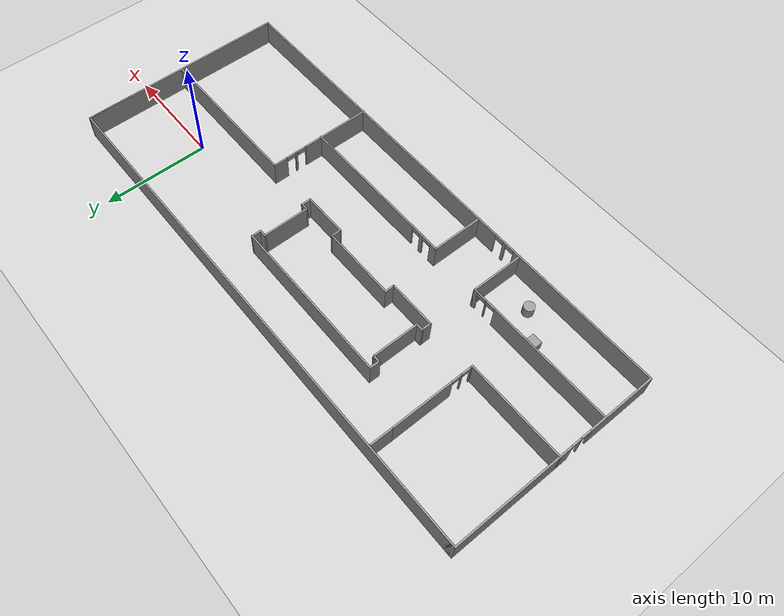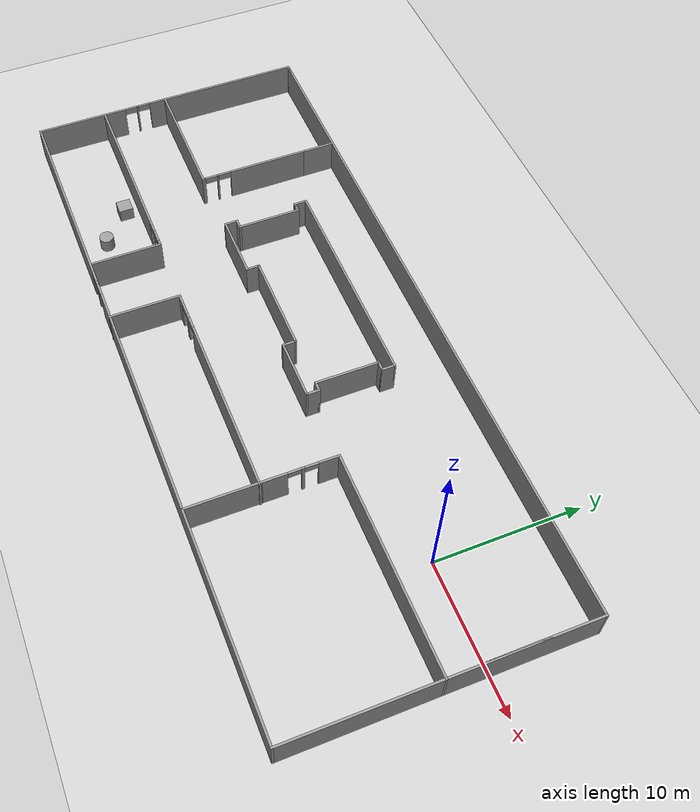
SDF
<sdf version="1.6">
 <world name="default">
  <model name="ground_plane">
   <static>1</static>
   <link name="link">
    <collision name="collision">
     <geometry><plane><normal>0 0 1</normal><size>100 100</size></plane></geometry>
     <surface><friction><ode><mu>100</mu><mu2>50</mu2></ode></friction></surface>
    </collision>
    <visual name="visual">
     <cast_shadows>0</cast_shadows>
     <geometry><plane><normal>0 0 1</normal><size>100 100</size></plane></geometry>
     <material>
      <script><uri>file://media/materials/scripts/gazebo.material</uri><name>Gazebo/Grey</name></script>
     </material>
    </visual>
   </link>
  </model>
  <model name="unit_cylinder_2">
   <pose>-30.9354 -11.0293 0.499997 4e-06 3e-06 -0</pose>
   <link name="link">
    <inertial>
     <mass>1</mass>
     <inertia><ixx>0.145833</ixx><ixy>0</ixy><ixz>0</ixz><iyy>0.145833</iyy><iyz>0</iyz><izz>0.125</izz></inertia>
    </inertial>
    <collision name="collision">
     <geometry><cylinder><radius>0.5</radius><length>1</length></cylinder></geometry>
    </collision>
    <visual name="visual">
     <geometry><cylinder><radius>0.5</radius><length>1</length></cylinder></geometry>
     <material>
      <script><name>Gazebo/Grey</name><uri>file://media/materials/scripts/gazebo.material</uri></script>
     </material>
    </visual>
   </link>
  </model>
  <model name="unit_box_8_1">
   <pose>-33.3865 -8.97945 0.499995 0 -1e-05 0</pose>
   <link name="link">
    <inertial>
     <mass>1</mass>
     <inertia>
      <ixx>0.166667</ixx>
      <ixy>0</ixy>
      <ixz>0</ixz>
      <iyy>0.166667</iyy>
      <iyz>0</iyz>
      <izz>0.166667</izz>
     </inertia>
    </inertial>
    <collision name="collision"><geometry><box><size>1 1 1</size></box></geometry></collision>
    <visual name="visual">
     <geometry><box><size>1 1 1</size></box></geometry>
     <material>
      <script><name>Gazebo/Grey</name><uri>file://media/materials/scripts/gazebo.material</uri></script>
     </material>
    </visual>
   </link>
  </model>
  <model name="build1_2">
   <pose>-17.0565 -2.99989 0 0 -0 0</pose>
   <link name="Wall_0">
    <collision name="Wall_0_Collision">
     <geometry><box><size>48.75 0.15 2.5</size></box></geometry>
     <pose>0 0 1.25 0 -0 0</pose>
    </collision>
    <visual name="Wall_0_Visual">
     <pose>0 0 1.25 0 -0 0</pose>
     <geometry><box><size>48.75 0.15 2.5</size></box></geometry>
     <material>
      <script><uri>file://media/materials/scripts/gazebo.material</uri><name>Gazebo/Grey</name></script>
      <ambient>1 1 1 1</ambient>
     </material>
    </visual>
    <pose>0.128151 9.93761 0 0 -0 0</pose>
   </link>
   <link name="Wall_10">
    <collision name="Wall_10_Collision">
     <geometry><box><size>0.75 0.15 2.5</size></box></geometry>
     <pose>0 0 1.25 0 -0 0</pose>
    </collision>
    <visual name="Wall_10_Visual">
     <pose>0 0 1.25 0 -0 0</pose>
     <geometry><box><size>0.75 0.15 2.5</size></box></geometry>
     <material>
      <script><uri>file://media/materials/scripts/gazebo.material</uri><name>Gazebo/Grey</name></script>
      <ambient>1 1 1 1</ambient>
     </material>
    </visual>
    <pose>-24.1218 9.93761 0 0 -0 0</pose>
   </link>
   <link name="Wall_101">
    <collision name="Wall_101_Collision">
     <geometry><box><size>10 0.15 2.5</size></box></geometry>
     <pose>0 0 1.25 0 -0 0</pose>
    </collision>
    <visual name="Wall_101_Visual">
     <pose>0 0 1.25 0 -0 0</pose>
     <geometry><box><size>10 0.15 2.5</size></box></geometry>
     <material>
      <script><uri>file://media/materials/scripts/gazebo.material</uri><name>Gazebo/Grey</name></script>
      <ambient>1 1 1 1</ambient>
     </material>
    </visual>
    <pose>24.4281 5.01261 0 0 0 -1.5708</pose>
   </link>
   <link name="Wall_102">
    <collision name="Wall_102_Collision">
     <geometry><box><size>15 0.15 2.5</size></box></geometry>
     <pose>0 0 1.25 0 -0 0</pose>
    </collision>
    <visual name="Wall_102_Visual">
     <pose>0 0 1.25 0 -0 0</pose>
     <geometry><box><size>15 0.15 2.5</size></box></geometry>
     <material>
      <script><uri>file://media/materials/scripts/gazebo.material</uri><name>Gazebo/Grey</name></script>
      <ambient>1 1 1 1</ambient>
     </material>
    </visual>
    <pose>17.0032 0.087612 0 0 -0 3.14159</pose>
   </link>
   <link name="Wall_103">
    <pose>9.57815 -2.46239 0 0 0 -1.5708</pose>
    <visual name="Wall_103_Visual_0">
     <pose>-1.90662 0 1.25 0 -0 0</pose>
     <geometry><box><size>1.43676 0.15 2.5</size></box></geometry>
     <material>
      <script><uri>file://media/materials/scripts/gazebo.material</uri><name>Gazebo/Grey</name></script>
      <ambient>1 1 1 1</ambient>
     </material>
    </visual>
    <collision name="Wall_103_Collision_0">
     <geometry><box><size>1.43676 0.15 2.5</size></box></geometry>
     <pose>-1.90662 0 1.25 0 -0 0</pose>
    </collision>
    <visual name="Wall_103_Visual_1">
     <pose>-0.188989 0 1.25 0 -0 0</pose>
     <geometry><box><size>0.198503 0.15 2.5</size></box></geometry>
     <material>
      <script><uri>file://media/materials/scripts/gazebo.material</uri><name>Gazebo/Grey</name></script>
      <ambient>1 1 1 1</ambient>
     </material>
    </visual>
    <collision name="Wall_103_Collision_1">
     <geometry><box><size>0.198503 0.15 2.5</size></box></geometry>
     <pose>-0.188989 0 1.25 0 -0 0</pose>
    </collision>
    <visual name="Wall_103_Visual_2">
     <pose>1.71763 0 1.25 0 -0 0</pose>
     <geometry><box><size>1.81474 0.15 2.5</size></box></geometry>
     <material>
      <script><uri>file://media/materials/scripts/gazebo.material</uri><name>Gazebo/Grey</name></script>
      <ambient>1 1 1 1</ambient>
     </material>
    </visual>
    <collision name="Wall_103_Collision_2">
     <geometry><box><size>1.81474 0.15 2.5</size></box></geometry>
     <pose>1.71763 0 1.25 0 -0 0</pose>
    </collision>
    <visual name="Wall_103_Visual_3">
     <pose>-0.73824 0 2.25 0 -0 0</pose>
     <geometry><box><size>0.9 0.15 0.5</size></box></geometry>
     <material>
      <script><uri>file://media/materials/scripts/gazebo.material</uri><name>Gazebo/Grey</name></script>
      <ambient>1 1 1 1</ambient>
     </material>
    </visual>
    <collision name="Wall_103_Collision_3">
     <geometry><box><size>0.9 0.15 0.5</size></box></geometry>
     <pose>-0.73824 0 2.25 0 -0 0</pose>
    </collision>
    <visual name="Wall_103_Visual_4">
     <pose>0.360263 0 2.25 0 -0 0</pose>
     <geometry><box><size>0.9 0.15 0.5</size></box></geometry>
     <material>
      <script><uri>file://media/materials/scripts/gazebo.material</uri><name>Gazebo/Grey</name></script>
      <ambient>1 1 1 1</ambient>
     </material>
    </visual>
    <collision name="Wall_103_Collision_4">
     <geometry><box><size>0.9 0.15 0.5</size></box></geometry>
     <pose>0.360263 0 2.25 0 -0 0</pose>
    </collision>
   </link>
   <link name="Wall_105">
    <pose>1.96209 -5.08761 0 0 -0 0</pose>
    <visual name="Wall_105_Visual_0">
     <pose>-7.37124 0 1.25 0 -0 0</pose>
     <geometry><box><size>0.757518 0.15 2.5</size></box></geometry>
     <material>
      <script><uri>file://media/materials/scripts/gazebo.material</uri><name>Gazebo/Grey</name></script>
      <ambient>1 1 1 1</ambient>
     </material>
    </visual>
    <collision name="Wall_105_Collision_0">
     <geometry><box><size>0.757518 0.15 2.5</size></box></geometry>
     <pose>-7.37124 0 1.25 0 -0 0</pose>
    </collision>
    <visual name="Wall_105_Visual_1">
     <pose>-5.91186 0 1.25 0 -0 0</pose>
     <geometry><box><size>0.361245 0.15 2.5</size></box></geometry>
     <material>
      <script><uri>file://media/materials/scripts/gazebo.material</uri><name>Gazebo/Grey</name></script>
      <ambient>1 1 1 1</ambient>
     </material>
    </visual>
    <collision name="Wall_105_Collision_1">
     <geometry><box><size>0.361245 0.15 2.5</size></box></geometry>
     <pose>-5.91186 0 1.25 0 -0 0</pose>
    </collision>
    <visual name="Wall_105_Visual_2">
     <pose>1.45938 0 1.25 0 -0 0</pose>
     <geometry><box><size>12.5812 0.15 2.5</size></box></geometry>
     <material>
      <script><uri>file://media/materials/scripts/gazebo.material</uri><name>Gazebo/Grey</name></script>
      <ambient>1 1 1 1</ambient>
     </material>
    </visual>
    <collision name="Wall_105_Collision_2">
     <geometry><box><size>12.5812 0.15 2.5</size></box></geometry>
     <pose>1.45938 0 1.25 0 -0 0</pose>
    </collision>
    <visual name="Wall_105_Visual_3">
     <pose>-6.54248 0 2.25 0 -0 0</pose>
     <geometry><box><size>0.9 0.15 0.5</size></box></geometry>
     <material>
      <script><uri>file://media/materials/scripts/gazebo.material</uri><name>Gazebo/Grey</name></script>
      <ambient>1 1 1 1</ambient>
     </material>
    </visual>
    <collision name="Wall_105_Collision_3">
     <geometry><box><size>0.9 0.15 0.5</size></box></geometry>
     <pose>-6.54248 0 2.25 0 -0 0</pose>
    </collision>
    <visual name="Wall_105_Visual_4">
     <pose>-5.28124 0 2.25 0 -0 0</pose>
     <geometry><box><size>0.9 0.15 0.5</size></box></geometry>
     <material>
      <script><uri>file://media/materials/scripts/gazebo.material</uri><name>Gazebo/Grey</name></script>
      <ambient>1 1 1 1</ambient>
     </material>
    </visual>
    <collision name="Wall_105_Collision_4">
     <geometry><box><size>0.9 0.15 0.5</size></box></geometry>
     <pose>-5.28124 0 2.25 0 -0 0</pose>
    </collision>
   </link>
   <link name="Wall_14">
    <collision name="Wall_14_Collision">
     <geometry><box><size>9.25 0.15 2.5</size></box></geometry>
     <pose>0 0 1.25 0 -0 0</pose>
    </collision>
    <visual name="Wall_14_Visual">
     <pose>0 0 1.25 0 -0 0</pose>
     <geometry><box><size>9.25 0.15 2.5</size></box></geometry>
     <material>
      <script><uri>file://media/materials/scripts/gazebo.material</uri><name>Gazebo/Grey</name></script>
      <ambient>1 1 1 1</ambient>
     </material>
    </visual>
    <pose>-19.8782 -0.176763 0 0 -0 3.14159</pose>
   </link>
   <link name="Wall_16">
    <pose>-15.3282 3.74824 0 0 -0 1.5708</pose>
    <visual name="Wall_16_Visual_0">
     <pose>-3.87767 0 1.25 0 -0 0</pose>
     <geometry><box><size>0.244662 0.15 2.5</size></box></geometry>
     <material>
      <script><uri>file://media/materials/scripts/gazebo.material</uri><name>Gazebo/Grey</name></script>
      <ambient>1 1 1 1</ambient>
     </material>
    </visual>
    <collision name="Wall_16_Collision_0">
     <geometry><box><size>0.244662 0.15 2.5</size></box></geometry>
     <pose>-3.87767 0 1.25 0 -0 0</pose>
    </collision>
    <visual name="Wall_16_Visual_1">
     <pose>-2.79773 0 1.25 0 -0 0</pose>
     <geometry><box><size>0.11521 0.15 2.5</size></box></geometry>
     <material>
      <script><uri>file://media/materials/scripts/gazebo.material</uri><name>Gazebo/Grey</name></script>
      <ambient>1 1 1 1</ambient>
     </material>
    </visual>
    <collision name="Wall_16_Collision_1">
     <geometry><box><size>0.11521 0.15 2.5</size></box></geometry>
     <pose>-2.79773 0 1.25 0 -0 0</pose>
    </collision>
    <visual name="Wall_16_Visual_2">
     <pose>1.07994 0 1.25 0 -0 0</pose>
     <geometry><box><size>5.84013 0.15 2.5</size></box></geometry>
     <material>
      <script><uri>file://media/materials/scripts/gazebo.material</uri><name>Gazebo/Grey</name></script>
      <ambient>1 1 1 1</ambient>
     </material>
    </visual>
    <collision name="Wall_16_Collision_2">
     <geometry><box><size>5.84013 0.15 2.5</size></box></geometry>
     <pose>1.07994 0 1.25 0 -0 0</pose>
    </collision>
    <visual name="Wall_16_Visual_3">
     <pose>-3.30534 0 2.25 0 -0 0</pose>
     <geometry><box><size>0.9 0.15 0.5</size></box></geometry>
     <material>
      <script><uri>file://media/materials/scripts/gazebo.material</uri><name>Gazebo/Grey</name></script>
      <ambient>1 1 1 1</ambient>
     </material>
    </visual>
    <collision name="Wall_16_Collision_3">
     <geometry><box><size>0.9 0.15 0.5</size></box></geometry>
     <pose>-3.30534 0 2.25 0 -0 0</pose>
    </collision>
    <visual name="Wall_16_Visual_4">
     <pose>-2.29013 0 2.25 0 -0 0</pose>
     <geometry><box><size>0.9 0.15 0.5</size></box></geometry>
     <material>
      <script><uri>file://media/materials/scripts/gazebo.material</uri><name>Gazebo/Grey</name></script>
      <ambient>1 1 1 1</ambient>
     </material>
    </visual>
    <collision name="Wall_16_Collision_4">
     <geometry><box><size>0.9 0.15 0.5</size></box></geometry>
     <pose>-2.29013 0 2.25 0 -0 0</pose>
    </collision>
   </link>
   <link name="Wall_19">
    <collision name="Wall_19_Collision">
     <geometry><box><size>2.25 0.15 2.5</size></box></geometry>
     <pose>0 0 1.25 0 -0 0</pose>
    </collision>
    <visual name="Wall_19_Visual">
     <pose>0 0 1.25 0 -0 0</pose>
     <geometry><box><size>2.25 0.15 2.5</size></box></geometry>
     <material>
      <script><uri>file://media/materials/scripts/gazebo.material</uri><name>Gazebo/Grey</name></script>
      <ambient>1 1 1 1</ambient>
     </material>
    </visual>
    <pose>-15.3282 8.72324 0 0 -0 1.5708</pose>
   </link>
   <link name="Wall_21">
    <pose>-17.4625 -4.93332 0 0 -0 0</pose>
    <visual name="Wall_21_Visual_0">
     <pose>-1.1775 0 1.25 0 -0 0</pose>
     <geometry><box><size>11.645 0.15 2.5</size></box></geometry>
     <material>
      <script><uri>file://media/materials/scripts/gazebo.material</uri><name>Gazebo/Grey</name></script>
      <ambient>1 1 1 1</ambient>
     </material>
    </visual>
    <collision name="Wall_21_Collision_0">
     <geometry><box><size>11.645 0.15 2.5</size></box></geometry>
     <pose>-1.1775 0 1.25 0 -0 0</pose>
    </collision>
    <visual name="Wall_21_Visual_1">
     <pose>5.6026 0 1.25 0 -0 0</pose>
     <geometry><box><size>0.115209 0.15 2.5</size></box></geometry>
     <material>
      <script><uri>file://media/materials/scripts/gazebo.material</uri><name>Gazebo/Grey</name></script>
      <ambient>1 1 1 1</ambient>
     </material>
    </visual>
    <collision name="Wall_21_Collision_1">
     <geometry><box><size>0.115209 0.15 2.5</size></box></geometry>
     <pose>5.6026 0 1.25 0 -0 0</pose>
    </collision>
    <visual name="Wall_21_Visual_2">
     <pose>6.7801 0 1.25 0 -0 0</pose>
     <geometry><box><size>0.439798 0.15 2.5</size></box></geometry>
     <material>
      <script><uri>file://media/materials/scripts/gazebo.material</uri><name>Gazebo/Grey</name></script>
      <ambient>1 1 1 1</ambient>
     </material>
    </visual>
    <collision name="Wall_21_Collision_2">
     <geometry><box><size>0.439798 0.15 2.5</size></box></geometry>
     <pose>6.7801 0 1.25 0 -0 0</pose>
    </collision>
    <visual name="Wall_21_Visual_3">
     <pose>5.09499 0 2.25 0 -0 0</pose>
     <geometry><box><size>0.9 0.15 0.5</size></box></geometry>
     <material>
      <script><uri>file://media/materials/scripts/gazebo.material</uri><name>Gazebo/Grey</name></script>
      <ambient>1 1 1 1</ambient>
     </material>
    </visual>
    <collision name="Wall_21_Collision_3">
     <geometry><box><size>0.9 0.15 0.5</size></box></geometry>
     <pose>5.09499 0 2.25 0 -0 0</pose>
    </collision>
    <visual name="Wall_21_Visual_4">
     <pose>6.1102 0 2.25 0 -0 0</pose>
     <geometry><box><size>0.9 0.15 0.5</size></box></geometry>
     <material>
      <script><uri>file://media/materials/scripts/gazebo.material</uri><name>Gazebo/Grey</name></script>
      <ambient>1 1 1 1</ambient>
     </material>
    </visual>
    <collision name="Wall_21_Collision_4">
     <geometry><box><size>0.9 0.15 0.5</size></box></geometry>
     <pose>6.1102 0 2.25 0 -0 0</pose>
    </collision>
   </link>
   <link name="Wall_22">
    <collision name="Wall_22_Collision">
     <geometry><box><size>5 0.15 2.5</size></box></geometry>
     <pose>0 0 1.25 0 -0 0</pose>
    </collision>
    <visual name="Wall_22_Visual">
     <pose>0 0 1.25 0 -0 0</pose>
     <geometry><box><size>5 0.15 2.5</size></box></geometry>
     <material>
      <script><uri>file://media/materials/scripts/gazebo.material</uri><name>Gazebo/Grey</name></script>
      <ambient>1 1 1 1</ambient>
     </material>
    </visual>
    <pose>-10.5375 -7.35832 0 0 0 -1.5708</pose>
   </link>
   <link name="Wall_24">
    <collision name="Wall_24_Collision">
     <geometry><box><size>5 0.15 2.5</size></box></geometry>
     <pose>0 0 1.25 0 -0 0</pose>
    </collision>
    <visual name="Wall_24_Visual">
     <pose>0 0 1.25 0 -0 0</pose>
     <geometry><box><size>5 0.15 2.5</size></box></geometry>
     <material>
      <script><uri>file://media/materials/scripts/gazebo.material</uri><name>Gazebo/Grey</name></script>
      <ambient>1 1 1 1</ambient>
     </material>
    </visual>
    <pose>-5.71291 -7.51261 0 0 -0 1.5708</pose>
   </link>
   <link name="Wall_26">
    <collision name="Wall_26_Collision">
     <geometry><box><size>5 0.15 2.5</size></box></geometry>
     <pose>0 0 1.25 0 -0 0</pose>
    </collision>
    <visual name="Wall_26_Visual">
     <pose>0 0 1.25 0 -0 0</pose>
     <geometry><box><size>5 0.15 2.5</size></box></geometry>
     <material>
      <script><uri>file://media/materials/scripts/gazebo.material</uri><name>Gazebo/Grey</name></script>
      <ambient>1 1 1 1</ambient>
     </material>
    </visual>
    <pose>9.57927 -7.43124 0 0 0 -1.5708</pose>
   </link>
   <link name="Wall_69">
    <collision name="Wall_69_Collision">
     <geometry><box><size>4.5 0.15 2.5</size></box></geometry>
     <pose>0 0 1.25 0 -0 0</pose>
    </collision>
    <visual name="Wall_69_Visual">
     <pose>0 0 1.25 0 -0 0</pose>
     <geometry><box><size>4.5 0.15 2.5</size></box></geometry>
     <material>
      <script><uri>file://media/materials/scripts/gazebo.material</uri><name>Gazebo/Grey</name></script>
      <ambient>1 1 1 1</ambient>
     </material>
    </visual>
    <pose>-8.40817 -0.110852 0 0 -0 0</pose>
   </link>
   <link name="Wall_7">
    <collision name="Wall_7_Collision">
     <geometry><box><size>20 0.15 2.5</size></box></geometry>
     <pose>0 0 1.25 0 -0 0</pose>
    </collision>
    <visual name="Wall_7_Visual">
     <pose>0 0 1.25 0 -0 0</pose>
     <geometry><box><size>20 0.15 2.5</size></box></geometry>
     <material>
      <script><uri>file://media/materials/scripts/gazebo.material</uri><name>Gazebo/Grey</name></script>
      <ambient>1 1 1 1</ambient>
     </material>
    </visual>
    <pose>24.4281 0.012612 0 0 0 -1.5708</pose>
   </link>
   <link name="Wall_70">
    <collision name="Wall_70_Collision">
     <geometry><box><size>1 0.15 2.5</size></box></geometry>
     <pose>0 0 1.25 0 -0 0</pose>
    </collision>
    <visual name="Wall_70_Visual">
     <pose>0 0 1.25 0 -0 0</pose>
     <geometry><box><size>1 0.15 2.5</size></box></geometry>
     <material>
      <script><uri>file://media/materials/scripts/gazebo.material</uri><name>Gazebo/Grey</name></script>
      <ambient>1 1 1 1</ambient>
     </material>
    </visual>
    <pose>-6.23316 0.314148 0 0 -0 1.5708</pose>
   </link>
   <link name="Wall_78">
    <collision name="Wall_78_Collision">
     <geometry><box><size>0.75 0.15 2.5</size></box></geometry>
     <pose>0 0 1.25 0 -0 0</pose>
    </collision>
    <visual name="Wall_78_Visual">
     <pose>0 0 1.25 0 -0 0</pose>
     <geometry><box><size>0.75 0.15 2.5</size></box></geometry>
     <material>
      <script><uri>file://media/materials/scripts/gazebo.material</uri><name>Gazebo/Grey</name></script>
      <ambient>1 1 1 1</ambient>
     </material>
    </visual>
    <pose>4.41683 0.739148 0 0 -0 3.14159</pose>
   </link>
   <link name="Wall_79">
    <collision name="Wall_79_Collision">
     <geometry><box><size>4.5 0.15 2.5</size></box></geometry>
     <pose>0 0 1.25 0 -0 0</pose>
    </collision>
    <visual name="Wall_79_Visual">
     <pose>0 0 1.25 0 -0 0</pose>
     <geometry><box><size>4.5 0.15 2.5</size></box></geometry>
     <material>
      <script><uri>file://media/materials/scripts/gazebo.material</uri><name>Gazebo/Grey</name></script>
      <ambient>1 1 1 1</ambient>
     </material>
    </visual>
    <pose>4.11684 2.91415 0 0 -0 1.5708</pose>
   </link>
   <link name="Wall_8">
    <pose>0.003151 -9.91239 0 0 -0 3.14159</pose>
    <visual name="Wall_8_Visual_0">
     <pose>-8.35572 0 1.25 0 -0 0</pose>
     <geometry><box><size>32.2886 0.15 2.5</size></box></geometry>
     <material>
      <script><uri>file://media/materials/scripts/gazebo.material</uri><name>Gazebo/Grey</name></script>
      <ambient>1 1 1 1</ambient>
     </material>
    </visual>
    <collision name="Wall_8_Collision_0">
     <geometry><box><size>32.2886 0.15 2.5</size></box></geometry>
     <pose>-8.35572 0 1.25 0 -0 0</pose>
    </collision>
    <visual name="Wall_8_Visual_1">
     <pose>8.82849 0 1.25 0 -0 0</pose>
     <geometry><box><size>0.279873 0.15 2.5</size></box></geometry>
     <material>
      <script><uri>file://media/materials/scripts/gazebo.material</uri><name>Gazebo/Grey</name></script>
      <ambient>1 1 1 1</ambient>
     </material>
    </visual>
    <collision name="Wall_8_Collision_1">
     <geometry><box><size>0.279873 0.15 2.5</size></box></geometry>
     <pose>8.82849 0 1.25 0 -0 0</pose>
    </collision>
    <visual name="Wall_8_Visual_2">
     <pose>17.1842 0 1.25 0 -0 0</pose>
     <geometry><box><size>14.6316 0.15 2.5</size></box></geometry>
     <material>
      <script><uri>file://media/materials/scripts/gazebo.material</uri><name>Gazebo/Grey</name></script>
      <ambient>1 1 1 1</ambient>
     </material>
    </visual>
    <collision name="Wall_8_Collision_2">
     <geometry><box><size>14.6316 0.15 2.5</size></box></geometry>
     <pose>17.1842 0 1.25 0 -0 0</pose>
    </collision>
    <visual name="Wall_8_Visual_3">
     <pose>8.23855 0 2.25 0 -0 0</pose>
     <geometry><box><size>0.9 0.15 0.5</size></box></geometry>
     <material>
      <script><uri>file://media/materials/scripts/gazebo.material</uri><name>Gazebo/Grey</name></script>
      <ambient>1 1 1 1</ambient>
     </material>
    </visual>
    <collision name="Wall_8_Collision_3">
     <geometry><box><size>0.9 0.15 0.5</size></box></geometry>
     <pose>8.23855 0 2.25 0 -0 0</pose>
    </collision>
    <visual name="Wall_8_Visual_4">
     <pose>9.41842 0 2.25 0 -0 0</pose>
     <geometry><box><size>0.9 0.15 0.5</size></box></geometry>
     <material>
      <script><uri>file://media/materials/scripts/gazebo.material</uri><name>Gazebo/Grey</name></script>
      <ambient>1 1 1 1</ambient>
     </material>
    </visual>
    <collision name="Wall_8_Collision_4">
     <geometry><box><size>0.9 0.15 0.5</size></box></geometry>
     <pose>9.41842 0 2.25 0 -0 0</pose>
    </collision>
   </link>
   <link name="Wall_80">
    <collision name="Wall_80_Collision">
     <geometry><box><size>0.75 0.15 2.5</size></box></geometry>
     <pose>0 0 1.25 0 -0 0</pose>
    </collision>
    <visual name="Wall_80_Visual">
     <pose>0 0 1.25 0 -0 0</pose>
     <geometry><box><size>0.75 0.15 2.5</size></box></geometry>
     <material>
      <script><uri>file://media/materials/scripts/gazebo.material</uri><name>Gazebo/Grey</name></script>
      <ambient>1 1 1 1</ambient>
     </material>
    </visual>
    <pose>4.41683 5.08915 0 0 -0 0</pose>
   </link>
   <link name="Wall_81">
    <collision name="Wall_81_Collision">
     <geometry><box><size>1 0.15 2.5</size></box></geometry>
     <pose>0 0 1.25 0 -0 0</pose>
    </collision>
    <visual name="Wall_81_Visual">
     <pose>0 0 1.25 0 -0 0</pose>
     <geometry><box><size>1 0.15 2.5</size></box></geometry>
     <material>
      <script><uri>file://media/materials/scripts/gazebo.material</uri><name>Gazebo/Grey</name></script>
      <ambient>1 1 1 1</ambient>
     </material>
    </visual>
    <pose>4.71683 5.51415 0 0 -0 1.5708</pose>
   </link>
   <link name="Wall_82">
    <collision name="Wall_82_Collision">
     <geometry><box><size>15.5 0.15 2.5</size></box></geometry>
     <pose>0 0 1.25 0 -0 0</pose>
    </collision>
    <visual name="Wall_82_Visual">
     <pose>0 0 1.25 0 -0 0</pose>
     <geometry><box><size>15.5 0.15 2.5</size></box></geometry>
     <material>
      <script><uri>file://media/materials/scripts/gazebo.material</uri><name>Gazebo/Grey</name></script>
      <ambient>1 1 1 1</ambient>
     </material>
    </visual>
    <pose>-2.95817 5.93915 0 0 -0 3.14159</pose>
   </link>
   <link name="Wall_84">
    <collision name="Wall_84_Collision">
     <geometry><box><size>1 0.15 2.5</size></box></geometry>
     <pose>0 0 1.25 0 -0 0</pose>
    </collision>
    <visual name="Wall_84_Visual">
     <pose>0 0 1.25 0 -0 0</pose>
     <geometry><box><size>1 0.15 2.5</size></box></geometry>
     <material>
      <script><uri>file://media/materials/scripts/gazebo.material</uri><name>Gazebo/Grey</name></script>
      <ambient>1 1 1 1</ambient>
     </material>
    </visual>
    <pose>-10.6332 5.51415 0 0 0 -1.5708</pose>
   </link>
   <link name="Wall_85">
    <collision name="Wall_85_Collision">
     <geometry><box><size>0.5 0.15 2.5</size></box></geometry>
     <pose>0 0 1.25 0 -0 0</pose>
    </collision>
    <visual name="Wall_85_Visual">
     <pose>0 0 1.25 0 -0 0</pose>
     <geometry><box><size>0.5 0.15 2.5</size></box></geometry>
     <material>
      <script><uri>file://media/materials/scripts/gazebo.material</uri><name>Gazebo/Grey</name></script>
      <ambient>1 1 1 1</ambient>
     </material>
    </visual>
    <pose>-10.4582 5.08915 0 0 -0 0</pose>
   </link>
   <link name="Wall_87">
    <collision name="Wall_87_Collision">
     <geometry><box><size>0.75 0.15 2.5</size></box></geometry>
     <pose>0 0 1.25 0 -0 0</pose>
    </collision>
    <visual name="Wall_87_Visual">
     <pose>0 0 1.25 0 -0 0</pose>
     <geometry><box><size>0.75 0.15 2.5</size></box></geometry>
     <material>
      <script><uri>file://media/materials/scripts/gazebo.material</uri><name>Gazebo/Grey</name></script>
      <ambient>1 1 1 1</ambient>
     </material>
    </visual>
    <pose>-10.3332 5.08915 0 0 -0 0</pose>
   </link>
   <link name="Wall_88">
    <collision name="Wall_88_Collision">
     <geometry><box><size>4.5 0.15 2.5</size></box></geometry>
     <pose>0 0 1.25 0 -0 0</pose>
    </collision>
    <visual name="Wall_88_Visual">
     <pose>0 0 1.25 0 -0 0</pose>
     <geometry><box><size>4.5 0.15 2.5</size></box></geometry>
     <material>
      <script><uri>file://media/materials/scripts/gazebo.material</uri><name>Gazebo/Grey</name></script>
      <ambient>1 1 1 1</ambient>
     </material>
    </visual>
    <pose>-10.0332 2.91415 0 0 0 -1.5708</pose>
   </link>
   <link name="Wall_89">
    <collision name="Wall_89_Collision">
     <geometry><box><size>0.75 0.15 2.5</size></box></geometry>
     <pose>0 0 1.25 0 -0 0</pose>
    </collision>
    <visual name="Wall_89_Visual">
     <pose>0 0 1.25 0 -0 0</pose>
     <geometry><box><size>0.75 0.15 2.5</size></box></geometry>
     <material>
      <script><uri>file://media/materials/scripts/gazebo.material</uri><name>Gazebo/Grey</name></script>
      <ambient>1 1 1 1</ambient>
     </material>
    </visual>
    <pose>-10.3332 0.739148 0 0 -0 3.14159</pose>
   </link>
   <link name="Wall_9">
    <pose>-24.4218 0.012612 0 0 -0 1.5708</pose>
    <visual name="Wall_9_Visual_0">
     <pose>-6.68083 0 1.25 0 -0 0</pose>
     <geometry><box><size>6.63833 0.15 2.5</size></box></geometry>
     <material>
      <script><uri>file://media/materials/scripts/gazebo.material</uri><name>Gazebo/Grey</name></script>
      <ambient>1 1 1 1</ambient>
     </material>
    </visual>
    <collision name="Wall_9_Collision_0">
     <geometry><box><size>6.63833 0.15 2.5</size></box></geometry>
     <pose>-6.68083 0 1.25 0 -0 0</pose>
    </collision>
    <visual name="Wall_9_Visual_1">
     <pose>-2.4031 0 1.25 0 -0 0</pose>
     <geometry><box><size>0.117133 0.15 2.5</size></box></geometry>
     <material>
      <script><uri>file://media/materials/scripts/gazebo.material</uri><name>Gazebo/Grey</name></script>
      <ambient>1 1 1 1</ambient>
     </material>
    </visual>
    <collision name="Wall_9_Collision_1">
     <geometry><box><size>0.117133 0.15 2.5</size></box></geometry>
     <pose>-2.4031 0 1.25 0 -0 0</pose>
    </collision>
    <visual name="Wall_9_Visual_2">
     <pose>4.27773 0 1.25 0 -0 0</pose>
     <geometry><box><size>11.4445 0.15 2.5</size></box></geometry>
     <material>
      <script><uri>file://media/materials/scripts/gazebo.material</uri><name>Gazebo/Grey</name></script>
      <ambient>1 1 1 1</ambient>
     </material>
    </visual>
    <collision name="Wall_9_Collision_2">
     <geometry><box><size>11.4445 0.15 2.5</size></box></geometry>
     <pose>4.27773 0 1.25 0 -0 0</pose>
    </collision>
    <visual name="Wall_9_Visual_3">
     <pose>-2.91167 0 2.25 0 -0 0</pose>
     <geometry><box><size>0.9 0.15 0.5</size></box></geometry>
     <material>
      <script><uri>file://media/materials/scripts/gazebo.material</uri><name>Gazebo/Grey</name></script>
      <ambient>1 1 1 1</ambient>
     </material>
    </visual>
    <collision name="Wall_9_Collision_3">
     <geometry><box><size>0.9 0.15 0.5</size></box></geometry>
     <pose>-2.91167 0 2.25 0 -0 0</pose>
    </collision>
    <visual name="Wall_9_Visual_4">
     <pose>-1.89453 0 2.25 0 -0 0</pose>
     <geometry><box><size>0.9 0.15 0.5</size></box></geometry>
     <material>
      <script><uri>file://media/materials/scripts/gazebo.material</uri><name>Gazebo/Grey</name></script>
      <ambient>1 1 1 1</ambient>
     </material>
    </visual>
    <collision name="Wall_9_Collision_4">
     <geometry><box><size>0.9 0.15 0.5</size></box></geometry>
     <pose>-1.89453 0 2.25 0 -0 0</pose>
    </collision>
   </link>
   <link name="Wall_92">
    <collision name="Wall_92_Collision">
     <geometry><box><size>1 0.15 2.5</size></box></geometry>
     <pose>0 0 1.25 0 -0 0</pose>
    </collision>
    <visual name="Wall_92_Visual">
     <pose>0 0 1.25 0 -0 0</pose>
     <geometry><box><size>1 0.15 2.5</size></box></geometry>
     <material>
      <script><uri>file://media/materials/scripts/gazebo.material</uri><name>Gazebo/Grey</name></script>
      <ambient>1 1 1 1</ambient>
     </material>
    </visual>
    <pose>-10.6332 0.314148 0 0 0 -1.5708</pose>
   </link>
   <link name="Wall_96">
    <collision name="Wall_96_Collision">
     <geometry><box><size>1 0.15 2.5</size></box></geometry>
     <pose>0 0 1.25 0 -0 0</pose>
    </collision>
    <visual name="Wall_96_Visual">
     <pose>0 0 1.25 0 -0 0</pose>
     <geometry><box><size>1 0.15 2.5</size></box></geometry>
     <material>
      <script><uri>file://media/materials/scripts/gazebo.material</uri><name>Gazebo/Grey</name></script>
      <ambient>1 1 1 1</ambient>
     </material>
    </visual>
    <pose>4.71683 0.314148 0 0 0 -1.5708</pose>
   </link>
   <link name="Wall_97">
    <collision name="Wall_97_Collision">
     <geometry><box><size>4.25 0.15 2.5</size></box></geometry>
     <pose>0 0 1.25 0 -0 0</pose>
    </collision>
    <visual name="Wall_97_Visual">
     <pose>0 0 1.25 0 -0 0</pose>
     <geometry><box><size>4.25 0.15 2.5</size></box></geometry>
     <material>
      <script><uri>file://media/materials/scripts/gazebo.material</uri><name>Gazebo/Grey</name></script>
      <ambient>1 1 1 1</ambient>
     </material>
    </visual>
    <pose>2.66683 -0.110852 0 0 -0 3.14159</pose>
   </link>
   <link name="Wall_98">
    <collision name="Wall_98_Collision">
     <geometry><box><size>1 0.15 2.5</size></box></geometry>
     <pose>0 0 1.25 0 -0 0</pose>
    </collision>
    <visual name="Wall_98_Visual">
     <pose>0 0 1.25 0 -0 0</pose>
     <geometry><box><size>1 0.15 2.5</size></box></geometry>
     <material>
      <script><uri>file://media/materials/scripts/gazebo.material</uri><name>Gazebo/Grey</name></script>
      <ambient>1 1 1 1</ambient>
     </material>
    </visual>
    <pose>0.616835 0.314148 0 0 -0 1.5708</pose>
   </link>
   <link name="Wall_99">
    <collision name="Wall_99_Collision">
     <geometry><box><size>7 0.15 2.5</size></box></geometry>
     <pose>0 0 1.25 0 -0 0</pose>
    </collision>
    <visual name="Wall_99_Visual">
     <pose>0 0 1.25 0 -0 0</pose>
     <geometry><box><size>7 0.15 2.5</size></box></geometry>
     <material>
      <script><uri>file://media/materials/scripts/gazebo.material</uri><name>Gazebo/Grey</name></script>
      <ambient>1 1 1 1</ambient>
     </material>
    </visual>
    <pose>-2.80816 0.739148 0 0 -0 3.14159</pose>
   </link>
   <static>1</static>
  </model>
 </world>
</sdf>
